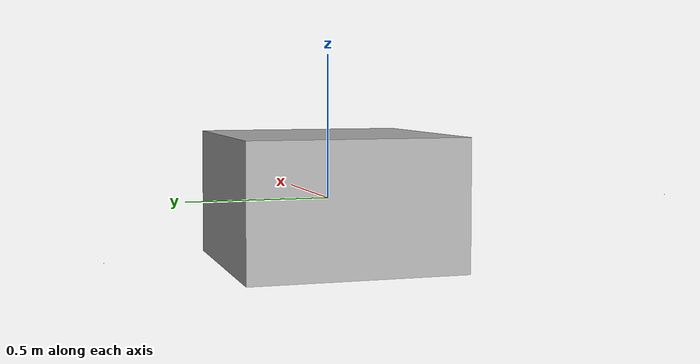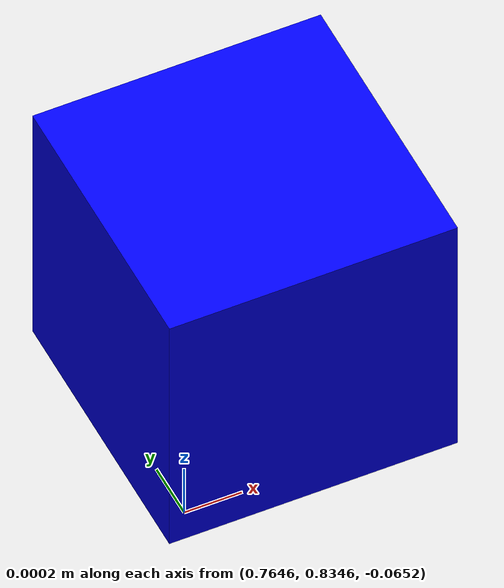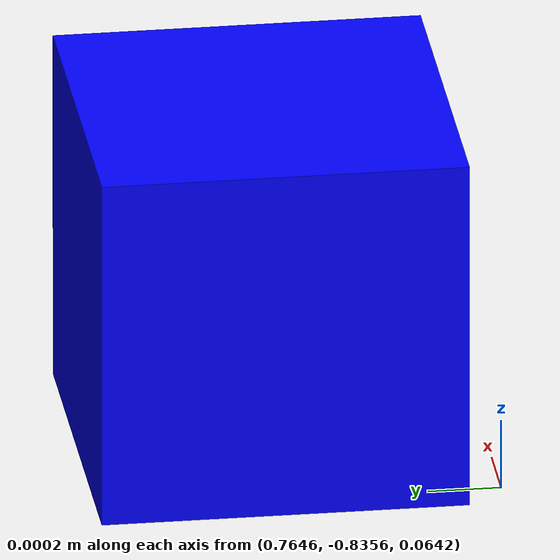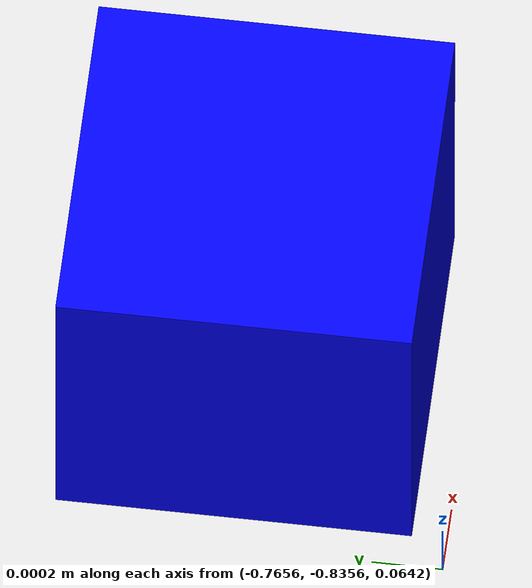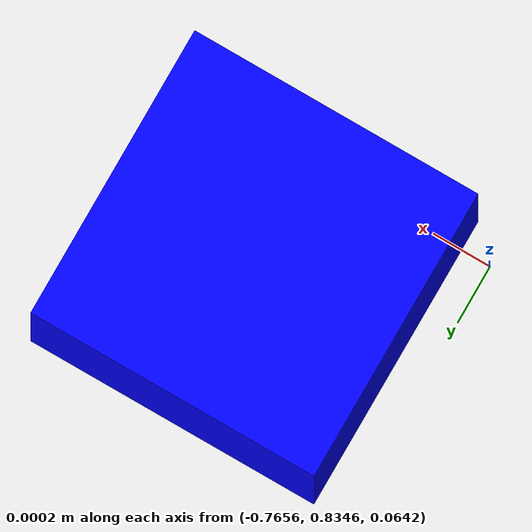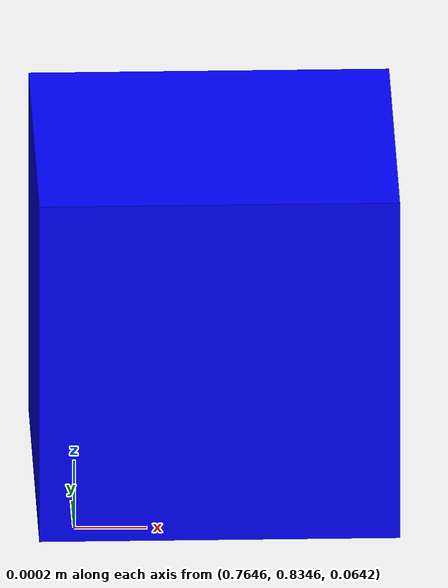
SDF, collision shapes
<?xml version="1.0" ?>

  <sdf version="1.5">
    <model name="tilt_quadcopter">

      <include>
        <uri>model://tilt_quadcopter_base</uri>
        <name>tilt_quadcopter_base</name>
        <pose>0 0 0.0 0 0 0</pose>
      </include>

      <include>
        <uri>model://tilt_quadcopter_tilt_front</uri>
        <name>tilt_quadcopter_tilt_front_0</name>
        <pose>0.765 -0.835 0 0 0 0</pose>
      </include>
      <joint name = "tilt_quadcopter_tilt_front_0_joint" type="revolute">
        <parent>tilt_quadcopter_base::base</parent>
        <child>tilt_quadcopter_tilt_front_0::tilt</child>
        <axis>
          <xyz>0 1 0</xyz>
          <limit>
            <lower>-1e+16</lower>
            <upper>1e+16</upper>
          </limit>
          <dynamics>
            <damping>0.1</damping>
            <spring_stiffness>0</spring_stiffness>
            <spring_reference>0</spring_reference>
          </dynamics>
          <use_parent_model_frame>1</use_parent_model_frame>
        </axis>
        <physics>
          <ode>
            <implicit_spring_damper>1</implicit_spring_damper>
          </ode>
        </physics>
      </joint>
      <plugin name = "tilt_quadcopter_tilt_front_0_plugin" filename='librotors_gazebo_motor_model.so'>
        <robotNamespace></robotNamespace>
        <jointName>tilt_quadcopter_tilt_front_0_joint </jointName>
        <linkName>tilt_quadcopter_tilt_front_0::tilt</linkName>
        <turningDirection>cw</turningDirection>
        <motorType>position</motorType>
        <commandSubTopic>/gazebo/command/tilt1_pos</commandSubTopic>
        <motorNumber>0</motorNumber>
        <motorSpeedPubTopic>tilt_pos/0</motorSpeedPubTopic>
        <joint_control_pid>
          <p>3</p>
          <i>1.2</i>
          <d>0.8</d>
          <iMax>10</iMax>
          <iMin>-10</iMin>
          <cmdMax>50</cmdMax>
          <cmdMin>-50</cmdMin>
        </joint_control_pid>
      </plugin>

      <include>
        <uri>model://tilt_quadcopter_tilt_front</uri>
        <name>tilt_quadcopter_tilt_front_1</name>
        <pose>-0.765 -0.835 0 0 0 0</pose>
      </include>
      <joint name = "tilt_quadcopter_tilt_front_1_joint" type="revolute">
        <parent>tilt_quadcopter_base::base</parent>
        <child>tilt_quadcopter_tilt_front_1::tilt</child>
        <axis>
          <xyz>0 1 0</xyz>
          <limit>
            <lower>-1e+16</lower>
            <upper>1e+16</upper>
          </limit>
          <dynamics>
            <damping>0.1</damping>
            <spring_stiffness>0</spring_stiffness>
            <spring_reference>0</spring_reference>
          </dynamics>
          <use_parent_model_frame>1</use_parent_model_frame>
        </axis>
        <physics>
          <ode>
            <implicit_spring_damper>1</implicit_spring_damper>
          </ode>
        </physics>
      </joint>
      <plugin name = "tilt_quadcopter_tilt_front_1_plugin" filename='librotors_gazebo_motor_model.so'>
        <robotNamespace></robotNamespace>
        <jointName>tilt_quadcopter_tilt_front_1_joint </jointName>
        <linkName>tilt_quadcopter_tilt_front_1::tilt</linkName>
        <turningDirection>cw</turningDirection>
        <motorType>position</motorType>
        <commandSubTopic>/gazebo/command/tilt1_pos</commandSubTopic>
        <motorNumber>1</motorNumber>
        <motorSpeedPubTopic>tilt_pos/1</motorSpeedPubTopic>
        <joint_control_pid>
          <p>3</p>
          <i>1.2</i>
          <d>0.8</d>
          <iMax>10</iMax>
          <iMin>-10</iMin>
          <cmdMax>50</cmdMax>
          <cmdMin>-50</cmdMin>
        </joint_control_pid>
      </plugin>

      <include>
        <uri>model://tilt_quadcopter_tilt_front</uri>
        <name>tilt_quadcopter_tilt_front_2</name>
        <pose>-0.765 0.835 0 0 0 0</pose>
      </include>
      <joint name = "tilt_quadcopter_tilt_front_2_joint" type="revolute">
        <parent>tilt_quadcopter_base::base</parent>
        <child>tilt_quadcopter_tilt_front_2::tilt</child>
        <axis>
          <xyz>0 1 0</xyz>
          <limit>
            <lower>-1e+16</lower>
            <upper>1e+16</upper>
          </limit>
          <dynamics>
            <damping>0.1</damping>
            <spring_stiffness>0</spring_stiffness>
            <spring_reference>0</spring_reference>
          </dynamics>
          <use_parent_model_frame>1</use_parent_model_frame>
        </axis>
        <physics>
          <ode>
            <implicit_spring_damper>1</implicit_spring_damper>
          </ode>
        </physics>
      </joint>
      <plugin name = "tilt_quadcopter_tilt_front_2_plugin" filename='librotors_gazebo_motor_model.so'>
        <robotNamespace></robotNamespace>
        <jointName>tilt_quadcopter_tilt_front_2_joint </jointName>
        <linkName>tilt_quadcopter_tilt_front_2::tilt</linkName>
        <turningDirection>cw</turningDirection>
        <motorType>position</motorType>
        <commandSubTopic>/gazebo/command/tilt1_pos</commandSubTopic>
        <motorNumber>2</motorNumber>
        <motorSpeedPubTopic>tilt_pos/2</motorSpeedPubTopic>
        <joint_control_pid>
          <p>3</p>
          <i>1.2</i>
          <d>0.8</d>
          <iMax>10</iMax>
          <iMin>-10</iMin>
          <cmdMax>50</cmdMax>
          <cmdMin>-50</cmdMin>
        </joint_control_pid>
      </plugin>

      <include>
        <uri>model://tilt_quadcopter_tilt_front</uri>
        <name>tilt_quadcopter_tilt_front_3</name>
        <pose>0.765 0.835 0 0 0 3.141592653589793</pose>
      </include>
      <joint name = "tilt_quadcopter_tilt_front_3_joint" type="revolute">
        <parent>tilt_quadcopter_base::base</parent>
        <child>tilt_quadcopter_tilt_front_3::tilt</child>
        <axis>
          <xyz>0 -1 0</xyz>
          <limit>
            <lower>-1e+16</lower>
            <upper>1e+16</upper>
          </limit>
          <dynamics>
            <damping>0.1</damping>
            <spring_stiffness>0</spring_stiffness>
            <spring_reference>0</spring_reference>
          </dynamics>
          <use_parent_model_frame>1</use_parent_model_frame>
        </axis>
        <physics>
          <ode>
            <implicit_spring_damper>1</implicit_spring_damper>
          </ode>
        </physics>
      </joint>
      <plugin name = "tilt_quadcopter_tilt_front_3_plugin" filename='librotors_gazebo_motor_model.so'>
        <robotNamespace></robotNamespace>
        <jointName>tilt_quadcopter_tilt_front_3_joint </jointName>
        <linkName>tilt_quadcopter_tilt_front_3::tilt</linkName>
        <turningDirection>cw</turningDirection>
        <motorType>position</motorType>
        <commandSubTopic>/gazebo/command/tilt1_pos</commandSubTopic>
        <motorNumber>3</motorNumber>
        <motorSpeedPubTopic>tilt_pos/3</motorSpeedPubTopic>
        <joint_control_pid>
          <p>3</p>
          <i>1.2</i>
          <d>0.8</d>
          <iMax>10</iMax>
          <iMin>-10</iMin>
          <cmdMax>50</cmdMax>
          <cmdMin>-50</cmdMin>
        </joint_control_pid>
      </plugin>

  <include>
    <uri>model://tilt_quadcopter_prop</uri>
    <name>tilt_quadcopter_prop_0</name>
    <pose>0.765 -0.835 0.0647 0 0 0</pose>
  </include>
  <joint name = "tilt_quadcopter_prop_0_joint" type="revolute">
    <parent>tilt_quadcopter_tilt_front_0::tilt</parent>
    <child>tilt_quadcopter_prop_0::prop</child>
    <axis>
      <xyz>0 0 1</xyz>
      <limit>
        <lower>-1e+16</lower>
        <upper>1e+16</upper>
      </limit>
      <dynamics>
        <damping>0.0001</damping>
      </dynamics>
      <use_parent_model_frame>1</use_parent_model_frame>
    </axis>
  </joint>
  <plugin name = "prop_0_plugin" filename='librotors_gazebo_motor_model.so'>
    <robotNamespace></robotNamespace>
    <jointName>tilt_quadcopter_prop_0_joint </jointName>
    <linkName>tilt_quadcopter_prop_0::prop</linkName>
    <turningDirection>ccw</turningDirection>
    <timeConstantUp>0.0125</timeConstantUp>
    <timeConstantDown>0.025</timeConstantDown>
    <maxRotVelocity>1000</maxRotVelocity>
    <motorConstant>1.199e-05</motorConstant>
    <momentConstant>0.1</momentConstant>
    <commandSubTopic>/gazebo/command/prop_speed</commandSubTopic>
    <motorNumber>0</motorNumber>
    <rotorDragCoefficient>0.000806428</rotorDragCoefficient>
    <rollingMomentCoefficient>1e-06</rollingMomentCoefficient>
    <motorSpeedPubTopic>prop_speed/0</motorSpeedPubTopic>
    <rotorVelocitySlowdownSim>10</rotorVelocitySlowdownSim>
  </plugin>

  <include>
    <uri>model://tilt_quadcopter_prop</uri>
    <name>tilt_quadcopter_prop_1</name>
    <pose>0.765 -0.835 -0.0647 0 0 0</pose>
  </include>
  <joint name = "tilt_quadcopter_prop_1_joint" type="revolute">
    <parent>tilt_quadcopter_tilt_front_0::tilt</parent>
    <child>tilt_quadcopter_prop_1::prop</child>
    <axis>
      <xyz>0 0 1</xyz>
      <limit>
        <lower>-1e+16</lower>
        <upper>1e+16</upper>
      </limit>
      <dynamics>
        <damping>0.0001</damping>
      </dynamics>
      <use_parent_model_frame>1</use_parent_model_frame>
    </axis>
  </joint>
  <plugin name = "prop_1_plugin" filename='librotors_gazebo_motor_model.so'>
    <robotNamespace></robotNamespace>
    <jointName>tilt_quadcopter_prop_1_joint </jointName>
    <linkName>tilt_quadcopter_prop_1::prop</linkName>
    <turningDirection>cw</turningDirection>
    <timeConstantUp>0.0125</timeConstantUp>
    <timeConstantDown>0.025</timeConstantDown>
    <maxRotVelocity>1000</maxRotVelocity>
    <motorConstant>1.199e-05</motorConstant>
    <momentConstant>0.1</momentConstant>
    <commandSubTopic>/gazebo/command/prop_speed</commandSubTopic>
    <motorNumber>1</motorNumber>
    <rotorDragCoefficient>0.000806428</rotorDragCoefficient>
    <rollingMomentCoefficient>1e-06</rollingMomentCoefficient>
    <motorSpeedPubTopic>prop_speed/1</motorSpeedPubTopic>
    <rotorVelocitySlowdownSim>10</rotorVelocitySlowdownSim>
  </plugin>

  <include>
    <uri>model://tilt_quadcopter_prop</uri>
    <name>tilt_quadcopter_prop_2</name>
    <pose>-0.765 -0.835 0.0647 0 0 0</pose>
  </include>
  <joint name = "tilt_quadcopter_prop_2_joint" type="revolute">
    <parent>tilt_quadcopter_tilt_front_1::tilt</parent>
    <child>tilt_quadcopter_prop_2::prop</child>
    <axis>
      <xyz>0 0 1</xyz>
      <limit>
        <lower>-1e+16</lower>
        <upper>1e+16</upper>
      </limit>
      <dynamics>
        <damping>0.0001</damping>
      </dynamics>
      <use_parent_model_frame>1</use_parent_model_frame>
    </axis>
  </joint>
  <plugin name = "prop_2_plugin" filename='librotors_gazebo_motor_model.so'>
    <robotNamespace></robotNamespace>
    <jointName>tilt_quadcopter_prop_2_joint </jointName>
    <linkName>tilt_quadcopter_prop_2::prop</linkName>
    <turningDirection>ccw</turningDirection>
    <timeConstantUp>0.0125</timeConstantUp>
    <timeConstantDown>0.025</timeConstantDown>
    <maxRotVelocity>1000</maxRotVelocity>
    <motorConstant>1.199e-05</motorConstant>
    <momentConstant>0.1</momentConstant>
    <commandSubTopic>/gazebo/command/prop_speed</commandSubTopic>
    <motorNumber>2</motorNumber>
    <rotorDragCoefficient>0.000806428</rotorDragCoefficient>
    <rollingMomentCoefficient>1e-06</rollingMomentCoefficient>
    <motorSpeedPubTopic>prop_speed/2</motorSpeedPubTopic>
    <rotorVelocitySlowdownSim>10</rotorVelocitySlowdownSim>
  </plugin>

  <include>
    <uri>model://tilt_quadcopter_prop</uri>
    <name>tilt_quadcopter_prop_3</name>
    <pose>-0.765 -0.835 -0.0647 0 0 0</pose>
  </include>
  <joint name = "tilt_quadcopter_prop_3_joint" type="revolute">
    <parent>tilt_quadcopter_tilt_front_1::tilt</parent>
    <child>tilt_quadcopter_prop_3::prop</child>
    <axis>
      <xyz>0 0 1</xyz>
      <limit>
        <lower>-1e+16</lower>
        <upper>1e+16</upper>
      </limit>
      <dynamics>
        <damping>0.0001</damping>
      </dynamics>
      <use_parent_model_frame>1</use_parent_model_frame>
    </axis>
  </joint>
  <plugin name = "prop_3_plugin" filename='librotors_gazebo_motor_model.so'>
    <robotNamespace></robotNamespace>
    <jointName>tilt_quadcopter_prop_3_joint </jointName>
    <linkName>tilt_quadcopter_prop_3::prop</linkName>
    <turningDirection>cw</turningDirection>
    <timeConstantUp>0.0125</timeConstantUp>
    <timeConstantDown>0.025</timeConstantDown>
    <maxRotVelocity>1000</maxRotVelocity>
    <motorConstant>1.199e-05</motorConstant>
    <momentConstant>0.1</momentConstant>
    <commandSubTopic>/gazebo/command/prop_speed</commandSubTopic>
    <motorNumber>3</motorNumber>
    <rotorDragCoefficient>0.000806428</rotorDragCoefficient>
    <rollingMomentCoefficient>1e-06</rollingMomentCoefficient>
    <motorSpeedPubTopic>prop_speed/3</motorSpeedPubTopic>
    <rotorVelocitySlowdownSim>10</rotorVelocitySlowdownSim>
  </plugin>

  <include>
    <uri>model://tilt_quadcopter_prop</uri>
    <name>tilt_quadcopter_prop_4</name>
    <pose>-0.765 0.835 0.0647 0 0 0</pose>
  </include>
  <joint name = "tilt_quadcopter_prop_4_joint" type="revolute">
    <parent>tilt_quadcopter_tilt_front_2::tilt</parent>
    <child>tilt_quadcopter_prop_4::prop</child>
    <axis>
      <xyz>0 0 1</xyz>
      <limit>
        <lower>-1e+16</lower>
        <upper>1e+16</upper>
      </limit>
      <dynamics>
        <damping>0.0001</damping>
      </dynamics>
      <use_parent_model_frame>1</use_parent_model_frame>
    </axis>
  </joint>
  <plugin name = "prop_4_plugin" filename='librotors_gazebo_motor_model.so'>
    <robotNamespace></robotNamespace>
    <jointName>tilt_quadcopter_prop_4_joint </jointName>
    <linkName>tilt_quadcopter_prop_4::prop</linkName>
    <turningDirection>ccw</turningDirection>
    <timeConstantUp>0.0125</timeConstantUp>
    <timeConstantDown>0.025</timeConstantDown>
    <maxRotVelocity>1000</maxRotVelocity>
    <motorConstant>1.199e-05</motorConstant>
    <momentConstant>0.1</momentConstant>
    <commandSubTopic>/gazebo/command/prop_speed</commandSubTopic>
    <motorNumber>4</motorNumber>
    <rotorDragCoefficient>0.000806428</rotorDragCoefficient>
    <rollingMomentCoefficient>1e-06</rollingMomentCoefficient>
    <motorSpeedPubTopic>prop_speed/4</motorSpeedPubTopic>
    <rotorVelocitySlowdownSim>10</rotorVelocitySlowdownSim>
  </plugin>

  <include>
    <uri>model://tilt_quadcopter_prop</uri>
    <name>tilt_quadcopter_prop_5</name>
    <pose>-0.765 0.835 -0.0647 0 0 0</pose>
  </include>
  <joint name = "tilt_quadcopter_prop_5_joint" type="revolute">
    <parent>tilt_quadcopter_tilt_front_2::tilt</parent>
    <child>tilt_quadcopter_prop_5::prop</child>
    <axis>
      <xyz>0 0 1</xyz>
      <limit>
        <lower>-1e+16</lower>
        <upper>1e+16</upper>
      </limit>
      <dynamics>
        <damping>0.0001</damping>
      </dynamics>
      <use_parent_model_frame>1</use_parent_model_frame>
    </axis>
  </joint>
  <plugin name = "prop_5_plugin" filename='librotors_gazebo_motor_model.so'>
    <robotNamespace></robotNamespace>
    <jointName>tilt_quadcopter_prop_5_joint </jointName>
    <linkName>tilt_quadcopter_prop_5::prop</linkName>
    <turningDirection>cw</turningDirection>
    <timeConstantUp>0.0125</timeConstantUp>
    <timeConstantDown>0.025</timeConstantDown>
    <maxRotVelocity>1000</maxRotVelocity>
    <motorConstant>1.199e-05</motorConstant>
    <momentConstant>0.1</momentConstant>
    <commandSubTopic>/gazebo/command/prop_speed</commandSubTopic>
    <motorNumber>5</motorNumber>
    <rotorDragCoefficient>0.000806428</rotorDragCoefficient>
    <rollingMomentCoefficient>1e-06</rollingMomentCoefficient>
    <motorSpeedPubTopic>prop_speed/5</motorSpeedPubTopic>
    <rotorVelocitySlowdownSim>10</rotorVelocitySlowdownSim>
  </plugin>

  <include>
    <uri>model://tilt_quadcopter_prop</uri>
    <name>tilt_quadcopter_prop_6</name>
    <pose>0.765 0.835 0.0647 0 0 0</pose>
  </include>
  <joint name = "tilt_quadcopter_prop_6_joint" type="revolute">
    <parent>tilt_quadcopter_tilt_front_3::tilt</parent>
    <child>tilt_quadcopter_prop_6::prop</child>
    <axis>
      <xyz>0 0 1</xyz>
      <limit>
        <lower>-1e+16</lower>
        <upper>1e+16</upper>
      </limit>
      <dynamics>
        <damping>0.0001</damping>
      </dynamics>
      <use_parent_model_frame>1</use_parent_model_frame>
    </axis>
  </joint>
  <plugin name = "prop_6_plugin" filename='librotors_gazebo_motor_model.so'>
    <robotNamespace></robotNamespace>
    <jointName>tilt_quadcopter_prop_6_joint </jointName>
    <linkName>tilt_quadcopter_prop_6::prop</linkName>
    <turningDirection>ccw</turningDirection>
    <timeConstantUp>0.0125</timeConstantUp>
    <timeConstantDown>0.025</timeConstantDown>
    <maxRotVelocity>1000</maxRotVelocity>
    <motorConstant>1.199e-05</motorConstant>
    <momentConstant>0.1</momentConstant>
    <commandSubTopic>/gazebo/command/prop_speed</commandSubTopic>
    <motorNumber>6</motorNumber>
    <rotorDragCoefficient>0.000806428</rotorDragCoefficient>
    <rollingMomentCoefficient>1e-06</rollingMomentCoefficient>
    <motorSpeedPubTopic>prop_speed/6</motorSpeedPubTopic>
    <rotorVelocitySlowdownSim>10</rotorVelocitySlowdownSim>
  </plugin>

  <include>
    <uri>model://tilt_quadcopter_prop</uri>
    <name>tilt_quadcopter_prop_7</name>
    <pose>0.765 0.835 -0.0647 0 0 0</pose>
  </include>
  <joint name = "tilt_quadcopter_prop_7_joint" type="revolute">
    <parent>tilt_quadcopter_tilt_front_3::tilt</parent>
    <child>tilt_quadcopter_prop_7::prop</child>
    <axis>
      <xyz>0 0 1</xyz>
      <limit>
        <lower>-1e+16</lower>
        <upper>1e+16</upper>
      </limit>
      <dynamics>
        <damping>0.0001</damping>
      </dynamics>
      <use_parent_model_frame>1</use_parent_model_frame>
    </axis>
  </joint>
  <plugin name = "prop_7_plugin" filename='librotors_gazebo_motor_model.so'>
    <robotNamespace></robotNamespace>
    <jointName>tilt_quadcopter_prop_7_joint </jointName>
    <linkName>tilt_quadcopter_prop_7::prop</linkName>
    <turningDirection>cw</turningDirection>
    <timeConstantUp>0.0125</timeConstantUp>
    <timeConstantDown>0.025</timeConstantDown>
    <maxRotVelocity>1000</maxRotVelocity>
    <motorConstant>1.199e-05</motorConstant>
    <momentConstant>0.1</momentConstant>
    <commandSubTopic>/gazebo/command/prop_speed</commandSubTopic>
    <motorNumber>7</motorNumber>
    <rotorDragCoefficient>0.000806428</rotorDragCoefficient>
    <rollingMomentCoefficient>1e-06</rollingMomentCoefficient>
    <motorSpeedPubTopic>prop_speed/7</motorSpeedPubTopic>
    <rotorVelocitySlowdownSim>10</rotorVelocitySlowdownSim>
  </plugin>

<plugin name="ArduRotorTiltQuadcopter" filename="libArduRotorTiltQuadcopter.so">
  <fdm_addr>127.0.0.1</fdm_addr>
  <fdm_port_in>9002</fdm_port_in>
  <fdm_port_out>9003</fdm_port_out>
  <modelXYZToAirplaneXForwardZDown>0 0 0 3.141593 0 0</modelXYZToAirplaneXForwardZDown>
  <gazeboXYZToNED>0 0 0 3.141593 0 0</gazeboXYZToNED>
  <motor_num>8</motor_num>
  <servo_num>4</servo_num>
  <motor_pub>/gazebo/command/prop_speed</motor_pub>
  <servo1_pub>/gazebo/command/tilt1_pos</servo1_pub>
  <imuName>tilt_quadcopter_base::imu_link::imu_sensor</imuName>
  <connectionTimeoutMaxCount>5</connectionTimeoutMaxCount>
</plugin>

<plugin name="imu_plugin" filename="librotors_gazebo_imu_plugin.so">
  <robotNamespace>tilt_quadcopter</robotNamespace>
  <linkName>tilt_quadcopter_base::imu_link</linkName>
  <imuTopic>imu</imuTopic>
  <gyroscopeNoiseDensity>0.000349</gyroscopeNoiseDensity>     <!-- rad/s/√Hz -->
  <gyroscopeBiasRandomWalk>0.000266</gyroscopeBiasRandomWalk>          <!-- rad/s²/√Hz -->
  <gyroscopeBiasCorrelationTime>600</gyroscopeBiasCorrelationTime>
  <gyroscopeTurnOnBiasSigma>0.0004</gyroscopeTurnOnBiasSigma>  <!-- rad/s -->
  <accelerometerNoiseDensity>0.00324</accelerometerNoiseDensity> <!-- m/s²/√Hz -->
  <accelerometerRandomWalk>0.0056</accelerometerRandomWalk>     <!-- m/s³/√Hz -->
  <accelerometerBiasCorrelationTime>600</accelerometerBiasCorrelationTime>
  <accelerometerTurnOnBiasSigma>0.016</accelerometerTurnOnBiasSigma> <!-- m/s² -->
</plugin>

</model>
</sdf>

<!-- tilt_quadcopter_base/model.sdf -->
<sdf version="1.5">
    <model name="tilt_quadcopter_base">

      <link name="base">
      <pose>0 0 0.0  0 0 0</pose>
      <inertial>
        <pose>0 0 0 0 0 0</pose>
        <mass>1.0</mass>
        <inertia>
          <ixx>0.2</ixx>
          <iyy>0.2</iyy>
          <izz>0.2</izz>
          <ixy>0</ixy>
          <ixz>0</ixz>
          <iyz>0</iyz>
        </inertia>
      </inertial>
      <collision name="base_collision">
        <pose>0 0 0  0 0 0</pose>
        <geometry>
          <box>
            <size>0.750 0.750 0.45</size>
          </box>
        </geometry>
        <surface>
          <contact>
            <ode/>
          </contact>
          <friction>
            <ode/>
          </friction>
        </surface>
      </collision>
      <visual name="base_visual">
        <geometry>
          <mesh>
            <uri>model://tilt_quadcopter_base/meshes/base.STL</uri>
          </mesh>
        </geometry>
        <material>
          <!-- Gazebo Classic Grey material, expressed without OGRE scripts. -->
          <ambient>0.3 0.3 0.3 1</ambient>
          <diffuse>0.7 0.7 0.7 1</diffuse>
          <specular>0.01 0.01 0.01 1</specular>
        </material>
      </visual>
    </link>
    <link name='imu_link'>
    <inertial>
      <pose>0 0 0 0 0 0</pose>
      <mass>0.15</mass>
      <inertia>
        <ixx>0.00001</ixx>
        <ixy>0</ixy>
        <ixz>0</ixz>
        <iyy>0.00002</iyy>
        <iyz>0</iyz>
        <izz>0.00002</izz>
      </inertia>
    </inertial>
    <sensor name="imu_sensor" type="imu">
      <pose>0 0 0 3.141593 0 0</pose>
      <always_on>1</always_on>
      <update_rate>1000.0</update_rate>
      <topic>__default_topic__</topic>
    </sensor>
  </link>
  <joint name='imu_joint' type='revolute'>
    <child>imu_link</child>
    <parent>base</parent>
    <axis>
      <xyz>0 0 1</xyz>
      <limit>
        <lower>-0.0001</lower>
        <upper>0.00001</upper>
        <effort>0</effort>
        <velocity>0</velocity>
      </limit>
      <dynamics>
        <damping>1.0</damping>
      </dynamics>
      <use_parent_model_frame>1</use_parent_model_frame>
    </axis>
    <physics>
      <ode>
        <implicit_spring_damper>1</implicit_spring_damper>
      </ode>
    </physics>
  </joint>

</model>
</sdf>

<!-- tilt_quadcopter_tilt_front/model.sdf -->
<sdf version="1.5">
    <model name="tilt_quadcopter_tilt_front">
      <link name='tilt'>
      <pose>0.0 -0.0 0.0 0 -0 0</pose>
      <inertial>
        <pose>0 0 0 0 -0 0</pose>
        <mass>0.2</mass>
        <inertia>
          <ixx>0.04</ixx>
          <ixy>0</ixy>
          <ixz>0</ixz>
          <iyy>0.1</iyy>
          <iyz>0</iyz>
          <!-- User-approved simulation approximation (2026-09-06):
               original 0.01 violates Iyy <= Ixx + Izz. Preserve mass,
               Ixx and the tilt-axis Iyy; this is not CAD-derived inertia. -->
          <izz>0.06</izz>
        </inertia>
      </inertial>
      <collision name='tilt_collision'>
        <pose>0 0 0 0 -0 0</pose>
        <geometry>
          <box>
            <size>0.0 0.0 0.0</size>
          </box>
        </geometry>
        <max_contacts>1</max_contacts>
      </collision>
      <visual name='tilt_visual'>
        <pose>0 0 0 0 -0 0</pose>
        <geometry>
          <mesh>
            <uri>model://tilt_quadcopter_tilt_front/meshes/tilt_front.STL</uri>
          </mesh>
        </geometry>
        <material>
          <!-- Gazebo Classic Blue material, expressed without OGRE scripts. -->
          <ambient>0 0 1 1</ambient>
          <diffuse>0 0 1 1</diffuse>
          <specular>0.1 0.1 0.1 1</specular>
        </material>
      </visual>
      <gravity>1</gravity>
      <velocity_decay />
      <self_collide>0</self_collide>
    </link>
  </model>
</sdf>

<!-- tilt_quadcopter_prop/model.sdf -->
<sdf version="1.5">
    <model name="tilt_quadcopter_prop">
      <link name='prop'>
      <pose>0.0 -0.0 0.0 0 -0 0</pose>
      <inertial>
        <pose>0 0 0 0 -0 0</pose>
        <mass>0.001</mass>
        <inertia>
          <ixx>0.001</ixx>
          <ixy>0</ixy>
          <ixz>0</ixz>
          <iyy>0.001</iyy>
          <iyz>0</iyz>
          <izz>0.001</izz>
        </inertia>
      </inertial>
      <collision name='prop_collision'>
        <pose>0 0 0 0 -0 0</pose>
        <geometry>
          <box>
            <size>0.001 0.001 0.001</size>
          </box>
        </geometry>
        <max_contacts>1</max_contacts>
      </collision>
      <visual name='prop_visual'>
        <pose>0 0 0 0 -0 0</pose>
        <geometry>
          <mesh>
            <uri>model://tilt_quadcopter_prop/meshes/prop.STL</uri>
          </mesh>
        </geometry>
        <material>
          <!-- Gazebo Classic Blue material, expressed without OGRE scripts. -->
          <ambient>0 0 1 1</ambient>
          <diffuse>0 0 1 1</diffuse>
          <specular>0.1 0.1 0.1 1</specular>
        </material>
      </visual>
      <gravity>1</gravity>
      <velocity_decay />
      <self_collide>0</self_collide>
    </link>
  </model>
</sdf>
